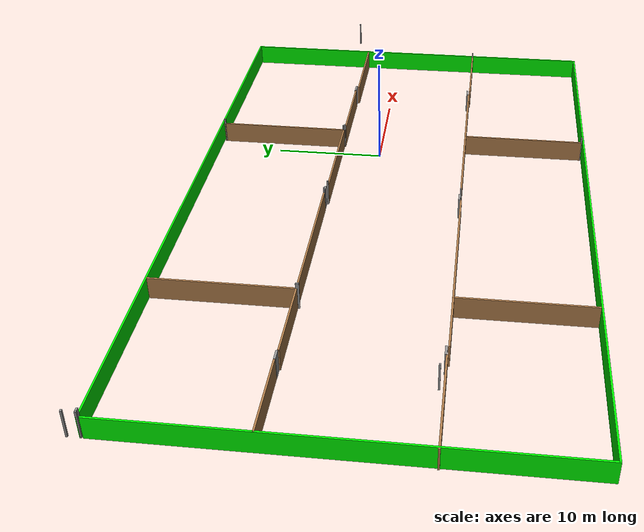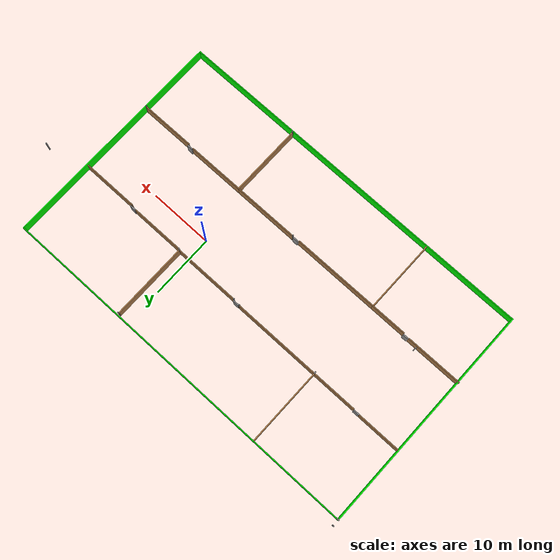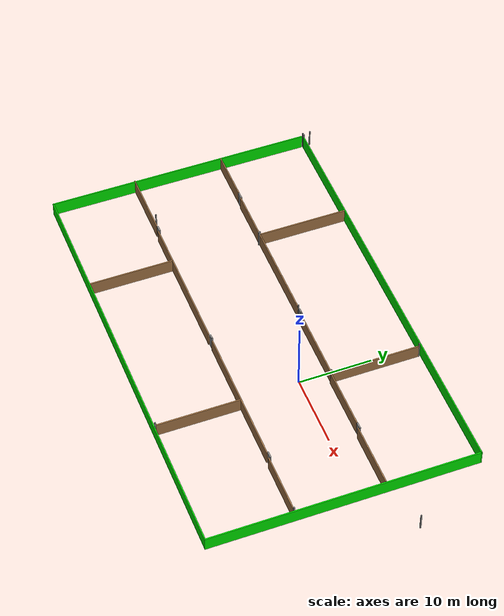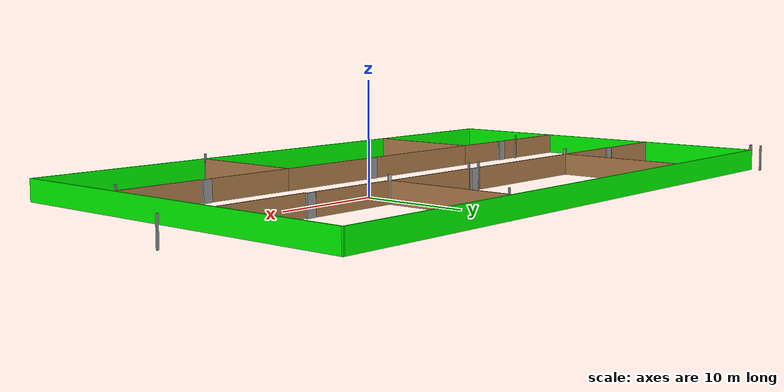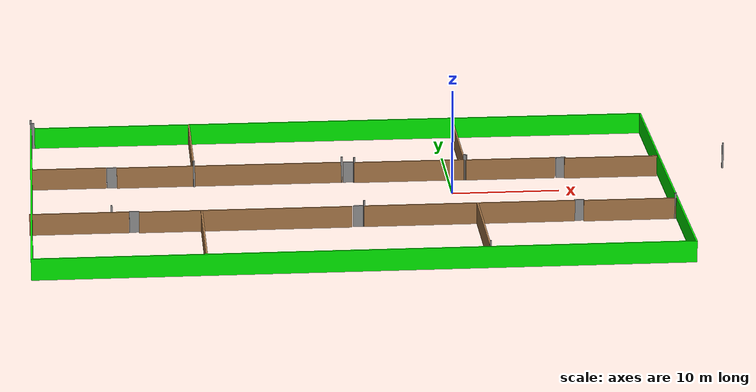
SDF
<?xml version='1.0'?>
<sdf version='1.6'>
  <model name='project1building'>
    <pose frame=''>-6.46196 -1.38005 0 0 -0 0</pose>
    <link name='Door_0'>
      <collision name='Door_0_Collision'>
        <geometry>
          <box>
            <size>0.9 0.17 2</size>
          </box>
        </geometry>
        <pose frame=''>0 0 1 0 -0 0</pose>
      </collision>
      <visual name='Door_0_Visual'>
        <pose frame=''>0 0 1 0 -0 0</pose>
        <geometry>
          <box>
            <size>0.9 0.17 2</size>
          </box>
        </geometry>
        <material>
          <script>
            <uri>file://media/materials/scripts/gazebo.material</uri>
            <name>Gazebo/Grey</name>
          </script>
        </material>
      </visual>
      <pose frame=''>-25.0869 5.43282 0 0 -0 0</pose>
    </link>
    <link name='Door_1'>
      <collision name='Door_1_Collision'>
        <geometry>
          <box>
            <size>0.9 0.17 2</size>
          </box>
        </geometry>
        <pose frame=''>0 0 1 0 -0 0</pose>
      </collision>
      <visual name='Door_1_Visual'>
        <pose frame=''>0 0 1 0 -0 0</pose>
        <geometry>
          <box>
            <size>0.9 0.17 2</size>
          </box>
        </geometry>
        <material>
          <script>
            <uri>file://media/materials/scripts/gazebo.material</uri>
            <name>Gazebo/Grey</name>
          </script>
        </material>
      </visual>
      <pose frame=''>-23.2683 -6.84282 0 0 -0 0</pose>
    </link>
    <link name='Door_4'>
      <collision name='Door_4_Collision'>
        <geometry>
          <box>
            <size>0.9 0.17 2</size>
          </box>
        </geometry>
        <pose frame=''>0 0 1 0 -0 0</pose>
      </collision>
      <visual name='Door_4_Visual'>
        <pose frame=''>0 0 1 0 -0 0</pose>
        <geometry>
          <box>
            <size>0.9 0.17 2</size>
          </box>
        </geometry>
        <material>
          <script>
            <uri>file://media/materials/scripts/gazebo.material</uri>
            <name>Gazebo/Grey</name>
          </script>
        </material>
      </visual>
      <pose frame=''>-2.96481 5.35785 0 0 -0 0</pose>
    </link>
    <link name='Door_5'>
      <collision name='Door_5_Collision'>
        <geometry>
          <box>
            <size>0.9 0.17 2</size>
          </box>
        </geometry>
        <pose frame=''>0 0 1 0 -0 0</pose>
      </collision>
      <visual name='Door_5_Visual'>
        <pose frame=''>0 0 1 0 -0 0</pose>
        <geometry>
          <box>
            <size>0.9 0.17 2</size>
          </box>
        </geometry>
        <material>
          <script>
            <uri>file://media/materials/scripts/gazebo.material</uri>
            <name>Gazebo/Grey</name>
          </script>
        </material>
      </visual>
      <pose frame=''>-2.96481 -6.90064 0 0 -0 0</pose>
    </link>
    <link name='Door_6'>
      <collision name='Door_6_Collision'>
        <geometry>
          <box>
            <size>0.9 0.17 2</size>
          </box>
        </geometry>
        <pose frame=''>0 0 1 0 -0 0</pose>
      </collision>
      <visual name='Door_6_Visual'>
        <pose frame=''>0 0 1 0 -0 0</pose>
        <geometry>
          <box>
            <size>0.9 0.17 2</size>
          </box>
        </geometry>
        <material>
          <script>
            <uri>file://media/materials/scripts/gazebo.material</uri>
            <name>Gazebo/Grey</name>
          </script>
        </material>
      </visual>
      <pose frame=''>17.0376 5.12607 0 0 -0 0</pose>
    </link>
    <link name='Door_7'>
      <collision name='Door_7_Collision'>
        <geometry>
          <box>
            <size>0.9 0.17 2</size>
          </box>
        </geometry>
        <pose frame=''>0 0 1 0 -0 0</pose>
      </collision>
      <visual name='Door_7_Visual'>
        <pose frame=''>0 0 1 0 -0 0</pose>
        <geometry>
          <box>
            <size>0.9 0.17 2</size>
          </box>
        </geometry>
        <material>
          <script>
            <uri>file://media/materials/scripts/gazebo.material</uri>
            <name>Gazebo/Grey</name>
          </script>
        </material>
      </visual>
      <pose frame=''>17.268 -6.84263 0 0 -0 0</pose>
    </link>
    <link name='Wall_10'>
      <collision name='Wall_10_Collision'>
        <geometry>
          <box>
            <size>0.15 0.15 2.5</size>
          </box>
        </geometry>
        <pose frame=''>0 0 1.25 0 -0 0</pose>
      </collision>
      <visual name='Wall_10_Visual'>
        <pose frame=''>0 0 1.25 0 -0 0</pose>
        <geometry>
          <box>
            <size>0.15 0.15 2.5</size>
          </box>
        </geometry>
        <material>
          <script>
            <uri>file://media/materials/scripts/gazebo.material</uri>
            <name>Gazebo/Grey</name>
          </script>
          <ambient>1 1 1 1</ambient>
        </material>
        <meta>
          <layer>0</layer>
        </meta>
      </visual>
      <pose frame=''>-32.548 17.55 0 0 -0 0</pose>
    </link>
    <link name='Wall_11'>
      <collision name='Wall_11_Collision'>
        <geometry>
          <box>
            <size>0.410301 0.15 2.5</size>
          </box>
        </geometry>
        <pose frame=''>0 0 1.25 0 -0 0</pose>
      </collision>
      <visual name='Wall_11_Visual'>
        <pose frame=''>0 0 1.25 0 -0 0</pose>
        <geometry>
          <box>
            <size>0.410301 0.15 2.5</size>
          </box>
        </geometry>
        <material>
          <script>
            <uri>file://media/materials/scripts/gazebo.material</uri>
            <name>Gazebo/Grey</name>
          </script>
          <ambient>1 1 1 1</ambient>
        </material>
        <meta>
          <layer>0</layer>
        </meta>
      </visual>
      <pose frame=''>-32.4179 17.55 0 0 0 -0.000357</pose>
    </link>
    <link name='Wall_13'>
      <collision name='Wall_13_Collision'>
        <geometry>
          <box>
            <size>7 0.15 2</size>
          </box>
        </geometry>
        <pose frame=''>0 0 1 0 -0 0</pose>
      </collision>
      <visual name='Wall_13_Visual'>
        <pose frame=''>0 0 1 0 -0 0</pose>
        <geometry>
          <box>
            <size>7 0.15 2</size>
          </box>
        </geometry>
        <material>
          <script>
            <uri>file://media/materials/scripts/gazebo.material</uri>
            <name>Gazebo/Wood</name>
          </script>
          <ambient>0 1 0 1</ambient>
        </material>
        <meta>
          <layer>0</layer>
        </meta>
      </visual>
      <pose frame=''>-29.087 5.43305 0 0 -0 0</pose>
    </link>
    <link name='Wall_17'>
      <collision name='Wall_17_Collision'>
        <geometry>
          <box>
            <size>12.25 0.15 2</size>
          </box>
        </geometry>
        <pose frame=''>0 0 1 0 -0 0</pose>
      </collision>
      <visual name='Wall_17_Visual'>
        <pose frame=''>0 0 1 0 -0 0</pose>
        <geometry>
          <box>
            <size>12.25 0.15 2</size>
          </box>
        </geometry>
        <material>
          <script>
            <uri>file://media/materials/scripts/gazebo.material</uri>
            <name>Gazebo/Wood</name>
          </script>
          <ambient>0 1 0 1</ambient>
        </material>
        <meta>
          <layer>0</layer>
        </meta>
      </visual>
      <pose frame=''>-17.419 11.376 0 0 0 -1.5708</pose>
    </link>
    <link name='Wall_18'>
      <collision name='Wall_18_Collision'>
        <geometry>
          <box>
            <size>7.25 0.15 2</size>
          </box>
        </geometry>
        <pose frame=''>0 0 1 0 -0 0</pose>
      </collision>
      <visual name='Wall_18_Visual'>
        <pose frame=''>0 0 1 0 -0 0</pose>
        <geometry>
          <box>
            <size>7.25 0.15 2</size>
          </box>
        </geometry>
        <material>
          <script>
            <uri>file://media/materials/scripts/gazebo.material</uri>
            <name>Gazebo/Wood</name>
          </script>
          <ambient>0 1 0 1</ambient>
        </material>
        <meta>
          <layer>0</layer>
        </meta>
      </visual>
      <pose frame=''>-20.969 5.32605 0 0 -0 3.14159</pose>
    </link>
    <link name='Wall_21'>
      <collision name='Wall_21_Collision'>
        <geometry>
          <box>
            <size>0.15 0.15 2.5</size>
          </box>
        </geometry>
        <pose frame=''>0 0 1.25 0 -0 0</pose>
      </collision>
      <visual name='Wall_21_Visual'>
        <pose frame=''>0 0 1.25 0 -0 0</pose>
        <geometry>
          <box>
            <size>0.15 0.15 2.5</size>
          </box>
        </geometry>
        <material>
          <script>
            <uri>file://media/materials/scripts/gazebo.material</uri>
            <name>Gazebo/Grey</name>
          </script>
          <ambient>1 1 1 1</ambient>
        </material>
        <meta>
          <layer>0</layer>
        </meta>
      </visual>
      <pose frame=''>-25.303 -6.50195 0 0 -0 0</pose>
    </link>
    <link name='Wall_23'>
      <collision name='Wall_23_Collision'>
        <geometry>
          <box>
            <size>9 0.15 2</size>
          </box>
        </geometry>
        <pose frame=''>0 0 1 0 -0 0</pose>
      </collision>
      <visual name='Wall_23_Visual'>
        <pose frame=''>0 0 1 0 -0 0</pose>
        <geometry>
          <box>
            <size>9 0.15 2</size>
          </box>
        </geometry>
        <material>
          <script>
            <uri>file://media/materials/scripts/gazebo.material</uri>
            <name>Gazebo/Wood</name>
          </script>
          <ambient>0 1 0 1</ambient>
        </material>
        <meta>
          <layer>0</layer>
        </meta>
      </visual>
      <pose frame=''>-28.2461 -6.93341 0 0 -0 0</pose>
    </link>
    <link name='Wall_26'>
      <collision name='Wall_26_Collision'>
        <geometry>
          <box>
            <size>5.75 0.15 2</size>
          </box>
        </geometry>
        <pose frame=''>0 0 1 0 -0 0</pose>
      </collision>
      <visual name='Wall_26_Visual'>
        <pose frame=''>0 0 1 0 -0 0</pose>
        <geometry>
          <box>
            <size>5.75 0.15 2</size>
          </box>
        </geometry>
        <material>
          <script>
            <uri>file://media/materials/scripts/gazebo.material</uri>
            <name>Gazebo/Wood</name>
          </script>
          <ambient>0 1 0 1</ambient>
        </material>
        <meta>
          <layer>0</layer>
        </meta>
      </visual>
      <pose frame=''>-19.973 -7.05495 0 0 -0 0</pose>
    </link>
    <link name='Wall_27'>
      <collision name='Wall_27_Collision'>
        <geometry>
          <box>
            <size>11.5 0.15 2</size>
          </box>
        </geometry>
        <pose frame=''>0 0 1 0 -0 0</pose>
      </collision>
      <visual name='Wall_27_Visual'>
        <pose frame=''>0 0 1 0 -0 0</pose>
        <geometry>
          <box>
            <size>11.5 0.15 2</size>
          </box>
        </geometry>
        <material>
          <script>
            <uri>file://media/materials/scripts/gazebo.material</uri>
            <name>Gazebo/Wood</name>
          </script>
          <ambient>0 1 0 1</ambient>
        </material>
        <meta>
          <layer>0</layer>
        </meta>
      </visual>
      <pose frame=''>-17.173 -12.73 0 0 0 -1.5708</pose>
    </link>
    <link name='Wall_3'>
      <collision name='Wall_3_Collision'>
        <geometry>
          <box>
            <size>0.16 0.15 2.5</size>
          </box>
        </geometry>
        <pose frame=''>0 0 1.25 0 -0 0</pose>
      </collision>
      <visual name='Wall_3_Visual'>
        <pose frame=''>0 0 1.25 0 -0 0</pose>
        <geometry>
          <box>
            <size>0.16 0.15 2.5</size>
          </box>
        </geometry>
        <material>
          <script>
            <uri>file://media/materials/scripts/gazebo.material</uri>
            <name>Gazebo/Grey</name>
          </script>
          <ambient>1 1 1 1</ambient>
        </material>
        <meta>
          <layer>0</layer>
        </meta>
      </visual>
      <pose frame=''>-32.5627 18.55 0 0 -0 0</pose>
    </link>
    <link name='Wall_32'>
      <collision name='Wall_32_Collision'>
        <geometry>
          <box>
            <size>0.3124 0.15 2.5</size>
          </box>
        </geometry>
        <pose frame=''>0 0 1.25 0 -0 0</pose>
      </collision>
      <visual name='Wall_32_Visual'>
        <pose frame=''>0 0 1.25 0 -0 0</pose>
        <geometry>
          <box>
            <size>0.3124 0.15 2.5</size>
          </box>
        </geometry>
        <material>
          <script>
            <uri>file://media/materials/scripts/gazebo.material</uri>
            <name>Gazebo/Grey</name>
          </script>
          <ambient>1 1 1 1</ambient>
        </material>
        <meta>
          <layer>0</layer>
        </meta>
      </visual>
      <pose frame=''>-17.4115 5.2452 0 0 0 -1.47732</pose>
    </link>
    <link name='Wall_37'>
      <collision name='Wall_37_Collision'>
        <geometry>
          <box>
            <size>14 0.15 2</size>
          </box>
        </geometry>
        <pose frame=''>0 0 1 0 -0 0</pose>
      </collision>
      <visual name='Wall_37_Visual'>
        <pose frame=''>0 0 1 0 -0 0</pose>
        <geometry>
          <box>
            <size>14 0.15 2</size>
          </box>
        </geometry>
        <material>
          <script>
            <uri>file://media/materials/scripts/gazebo.material</uri>
            <name>Gazebo/Wood</name>
          </script>
          <ambient>0 1 0 1</ambient>
        </material>
        <meta>
          <layer>0</layer>
        </meta>
      </visual>
      <pose frame=''>-10.494 5.32605 0 0 -0 0</pose>
    </link>
    <link name='Wall_38'>
      <collision name='Wall_38_Collision'>
        <geometry>
          <box>
            <size>0.16 0.15 2.5</size>
          </box>
        </geometry>
        <pose frame=''>0 0 1.25 0 -0 0</pose>
      </collision>
      <visual name='Wall_38_Visual'>
        <pose frame=''>0 0 1.25 0 -0 0</pose>
        <geometry>
          <box>
            <size>0.16 0.15 2.5</size>
          </box>
        </geometry>
        <material>
          <script>
            <uri>file://media/materials/scripts/gazebo.material</uri>
            <name>Gazebo/Grey</name>
          </script>
          <ambient>1 1 1 1</ambient>
        </material>
        <meta>
          <layer>0</layer>
        </meta>
      </visual>
      <pose frame=''>-3.56404 5.32605 0 0 -0 0</pose>
    </link>
    <link name='Wall_40'>
      <collision name='Wall_40_Collision'>
        <geometry>
          <box>
            <size>0.16 0.15 2.5</size>
          </box>
        </geometry>
        <pose frame=''>0 0 1.25 0 -0 0</pose>
      </collision>
      <visual name='Wall_40_Visual'>
        <pose frame=''>0 0 1.25 0 -0 0</pose>
        <geometry>
          <box>
            <size>0.16 0.15 2.5</size>
          </box>
        </geometry>
        <material>
          <script>
            <uri>file://media/materials/scripts/gazebo.material</uri>
            <name>Gazebo/Grey</name>
          </script>
          <ambient>1 1 1 1</ambient>
        </material>
        <meta>
          <layer>0</layer>
        </meta>
      </visual>
      <pose frame=''>-2.39819 5.17087 0 0 -0 0.034078</pose>
    </link>
    <link name='Wall_41'>
      <collision name='Wall_41_Collision'>
        <geometry>
          <box>
            <size>10.5 0.15 2</size>
          </box>
        </geometry>
        <pose frame=''>0 0 1 0 -0 0</pose>
      </collision>
      <visual name='Wall_41_Visual'>
        <pose frame=''>0 0 1 0 -0 0</pose>
        <geometry>
          <box>
            <size>10.5 0.15 2</size>
          </box>
        </geometry>
        <material>
          <script>
            <uri>file://media/materials/scripts/gazebo.material</uri>
            <name>Gazebo/Wood</name>
          </script>
          <ambient>0 1 0 1</ambient>
        </material>
        <meta>
          <layer>0</layer>
        </meta>
      </visual>
      <pose frame=''>2.78196 5.17105 0 0 -0 0</pose>
    </link>
    <link name='Wall_42'>
      <collision name='Wall_42_Collision'>
        <geometry>
          <box>
            <size>12.25 0.15 2</size>
          </box>
        </geometry>
        <pose frame=''>0 0 1 0 -0 0</pose>
      </collision>
      <visual name='Wall_42_Visual'>
        <pose frame=''>0 0 1 0 -0 0</pose>
        <geometry>
          <box>
            <size>12.25 0.15 2</size>
          </box>
        </geometry>
        <material>
          <script>
            <uri>file://media/materials/scripts/gazebo.material</uri>
            <name>Gazebo/Wood</name>
          </script>
          <ambient>0 1 0 1</ambient>
        </material>
        <meta>
          <layer>0</layer>
        </meta>
      </visual>
      <pose frame=''>7.95696 11.221 0 0 -0 1.5708</pose>
    </link>
    <link name='Wall_43'>
      <collision name='Wall_43_Collision'>
        <geometry>
          <box>
            <size>0.16 0.15 2.5</size>
          </box>
        </geometry>
        <pose frame=''>0 0 1.25 0 -0 0</pose>
      </collision>
      <visual name='Wall_43_Visual'>
        <pose frame=''>0 0 1.25 0 -0 0</pose>
        <geometry>
          <box>
            <size>0.16 0.15 2.5</size>
          </box>
        </geometry>
        <material>
          <script>
            <uri>file://media/materials/scripts/gazebo.material</uri>
            <name>Gazebo/Grey</name>
          </script>
          <ambient>1 1 1 1</ambient>
        </material>
        <meta>
          <layer>0</layer>
        </meta>
      </visual>
      <pose frame=''>7.9618 17.2709 0 0 0 -0.036291</pose>
    </link>
    <link name='Wall_45'>
      <collision name='Wall_45_Collision'>
        <geometry>
          <box>
            <size>13.75 0.15 2</size>
          </box>
        </geometry>
        <pose frame=''>0 0 1 0 -0 0</pose>
      </collision>
      <visual name='Wall_45_Visual'>
        <pose frame=''>0 0 1 0 -0 0</pose>
        <geometry>
          <box>
            <size>13.75 0.15 2</size>
          </box>
        </geometry>
        <material>
          <script>
            <uri>file://media/materials/scripts/gazebo.material</uri>
            <name>Gazebo/Wood</name>
          </script>
          <ambient>0 1 0 1</ambient>
        </material>
        <meta>
          <layer>0</layer>
        </meta>
      </visual>
      <pose frame=''>-10.373 -7.05495 0 0 -0 0</pose>
    </link>
    <link name='Wall_49'>
      <collision name='Wall_49_Collision'>
        <geometry>
          <box>
            <size>0.16 0.15 2.5</size>
          </box>
        </geometry>
        <pose frame=''>0 0 1.25 0 -0 0</pose>
      </collision>
      <visual name='Wall_49_Visual'>
        <pose frame=''>0 0 1.25 0 -0 0</pose>
        <geometry>
          <box>
            <size>0.16 0.15 2.5</size>
          </box>
        </geometry>
        <material>
          <script>
            <uri>file://media/materials/scripts/gazebo.material</uri>
            <name>Gazebo/Grey</name>
          </script>
          <ambient>1 1 1 1</ambient>
        </material>
        <meta>
          <layer>0</layer>
        </meta>
      </visual>
      <pose frame=''>-2.39819 -6.99408 0 0 -0 0.025083</pose>
    </link>
    <link name='Wall_5'>
      <collision name='Wall_5_Collision'>
        <geometry>
          <box>
            <size>36 0.15 2</size>
          </box>
        </geometry>
        <pose frame=''>0 0 1 0 -0 0</pose>
      </collision>
      <visual name='Wall_5_Visual'>
        <pose frame=''>0 0 1 0 -0 0</pose>
        <geometry>
          <box>
            <size>36 0.15 2</size>
          </box>
        </geometry>
        <material>
          <script>
            <uri>file://media/materials/scripts/gazebo.material</uri>
            <name>Gazebo/Grey</name>
          </script>
          <ambient>0 1 0 1</ambient>
        </material>
        <meta>
          <layer>0</layer>
        </meta>
      </visual>
      <pose frame=''>-32.548 -0.624953 0 0 0 -1.5708</pose>
    </link>
    <link name='Wall_50'>
      <collision name='Wall_50_Collision'>
        <geometry>
          <box>
            <size>10.5 0.15 2</size>
          </box>
        </geometry>
        <pose frame=''>0 0 1 0 -0 0</pose>
      </collision>
      <visual name='Wall_50_Visual'>
        <pose frame=''>0 0 1 0 -0 0</pose>
        <geometry>
          <box>
            <size>10.5 0.15 2</size>
          </box>
        </geometry>
        <material>
          <script>
            <uri>file://media/materials/scripts/gazebo.material</uri>
            <name>Gazebo/Wood</name>
          </script>
          <ambient>0 1 0 1</ambient>
        </material>
        <meta>
          <layer>0</layer>
        </meta>
      </visual>
      <pose frame=''>2.78196 -6.99395 0 0 -0 0</pose>
    </link>
    <link name='Wall_51'>
      <collision name='Wall_51_Collision'>
        <geometry>
          <box>
            <size>11.5 0.15 2</size>
          </box>
        </geometry>
        <pose frame=''>0 0 1 0 -0 0</pose>
      </collision>
      <visual name='Wall_51_Visual'>
        <pose frame=''>0 0 1 0 -0 0</pose>
        <geometry>
          <box>
            <size>11.5 0.15 2</size>
          </box>
        </geometry>
        <material>
          <script>
            <uri>file://media/materials/scripts/gazebo.material</uri>
            <name>Gazebo/Wood</name>
          </script>
          <ambient>0 1 0 1</ambient>
        </material>
        <meta>
          <layer>0</layer>
        </meta>
      </visual>
      <pose frame=''>7.95696 -12.669 0 0 0 -1.5708</pose>
    </link>
    <link name='Wall_52'>
      <collision name='Wall_52_Collision'>
        <geometry>
          <box>
            <size>0.16 0.15 2.5</size>
          </box>
        </geometry>
        <pose frame=''>0 0 1.25 0 -0 0</pose>
      </collision>
      <visual name='Wall_52_Visual'>
        <pose frame=''>0 0 1.25 0 -0 0</pose>
        <geometry>
          <box>
            <size>0.16 0.15 2.5</size>
          </box>
        </geometry>
        <material>
          <script>
            <uri>file://media/materials/scripts/gazebo.material</uri>
            <name>Gazebo/Grey</name>
          </script>
          <ambient>1 1 1 1</ambient>
        </material>
        <meta>
          <layer>0</layer>
        </meta>
      </visual>
      <pose frame=''>7.9618 -18.3441 0 0 0 -0.026712</pose>
    </link>
    <link name='Wall_54'>
      <collision name='Wall_54_Collision'>
        <geometry>
          <box>
            <size>0.310611 0.15 2.5</size>
          </box>
        </geometry>
        <pose frame=''>0 0 1.25 0 -0 0</pose>
      </collision>
      <visual name='Wall_54_Visual'>
        <pose frame=''>0 0 1.25 0 -0 0</pose>
        <geometry>
          <box>
            <size>0.310611 0.15 2.5</size>
          </box>
        </geometry>
        <material>
          <script>
            <uri>file://media/materials/scripts/gazebo.material</uri>
            <name>Gazebo/Grey</name>
          </script>
          <ambient>1 1 1 1</ambient>
        </material>
        <meta>
          <layer>0</layer>
        </meta>
      </visual>
      <pose frame=''>8.02196 5.12405 0 0 0 -0.626047</pose>
    </link>
    <link name='Wall_55'>
      <collision name='Wall_55_Collision'>
        <geometry>
          <box>
            <size>8.5 0.15 2</size>
          </box>
        </geometry>
        <pose frame=''>0 0 1 0 -0 0</pose>
      </collision>
      <visual name='Wall_55_Visual'>
        <pose frame=''>0 0 1 0 -0 0</pose>
        <geometry>
          <box>
            <size>8.5 0.15 2</size>
          </box>
        </geometry>
        <material>
          <script>
            <uri>file://media/materials/scripts/gazebo.material</uri>
            <name>Gazebo/Wood</name>
          </script>
          <ambient>0 1 0 1</ambient>
        </material>
        <meta>
          <layer>0</layer>
        </meta>
      </visual>
      <pose frame=''>12.262 5.07705 0 0 -0 0</pose>
    </link>
    <link name='Wall_6'>
      <collision name='Wall_6_Collision'>
        <geometry>
          <box>
            <size>59 0.15 2</size>
          </box>
        </geometry>
        <pose frame=''>0 0 1 0 -0 0</pose>
      </collision>
      <visual name='Wall_6_Visual'>
        <pose frame=''>0 0 1 0 -0 0</pose>
        <geometry>
          <box>
            <size>59 0.15 2</size>
          </box>
        </geometry>
        <material>
          <script>
            <uri>file://media/materials/scripts/gazebo.material</uri>
            <name>Gazebo/Grey</name>
          </script>
          <ambient>0 1 0 1</ambient>
        </material>
        <meta>
          <layer>0</layer>
        </meta>
      </visual>
      <pose frame=''>-3.12304 -18.55 0 0 -0 0</pose>
    </link>
    <link name='Wall_60'>
      <collision name='Wall_60_Collision'>
        <geometry>
          <box>
            <size>8.75 0.15 2</size>
          </box>
        </geometry>
        <pose frame=''>0 0 1 0 -0 0</pose>
      </collision>
      <visual name='Wall_60_Visual'>
        <pose frame=''>0 0 1 0 -0 0</pose>
        <geometry>
          <box>
            <size>8.75 0.15 2</size>
          </box>
        </geometry>
        <material>
          <script>
            <uri>file://media/materials/scripts/gazebo.material</uri>
            <name>Gazebo/Wood</name>
          </script>
          <ambient>0 1 0 1</ambient>
        </material>
        <meta>
          <layer>0</layer>
        </meta>
      </visual>
      <pose frame=''>21.745 4.88205 0 0 -0 0</pose>
    </link>
    <link name='Wall_62'>
      <collision name='Wall_62_Collision'>
        <geometry>
          <box>
            <size>0.16 0.15 2.5</size>
          </box>
        </geometry>
        <pose frame=''>0 0 1.25 0 -0 0</pose>
      </collision>
      <visual name='Wall_62_Visual'>
        <pose frame=''>0 0 1.25 0 -0 0</pose>
        <geometry>
          <box>
            <size>0.16 0.15 2.5</size>
          </box>
        </geometry>
        <material>
          <script>
            <uri>file://media/materials/scripts/gazebo.material</uri>
            <name>Gazebo/Grey</name>
          </script>
          <ambient>1 1 1 1</ambient>
        </material>
        <meta>
          <layer>0</layer>
        </meta>
      </visual>
      <pose frame=''>32.6661 6.65487 0 0 -0 0</pose>
    </link>
    <link name='Wall_67'>
      <collision name='Wall_67_Collision'>
        <geometry>
          <box>
            <size>9 0.15 2</size>
          </box>
        </geometry>
        <pose frame=''>0 0 1 0 -0 0</pose>
      </collision>
      <visual name='Wall_67_Visual'>
        <pose frame=''>0 0 1 0 -0 0</pose>
        <geometry>
          <box>
            <size>9 0.15 2</size>
          </box>
        </geometry>
        <material>
          <script>
            <uri>file://media/materials/scripts/gazebo.material</uri>
            <name>Gazebo/Wood</name>
          </script>
          <ambient>0 1 0 1</ambient>
        </material>
        <meta>
          <layer>0</layer>
        </meta>
      </visual>
      <pose frame=''>12.382 -6.99395 0 0 -0 0</pose>
    </link>
    <link name='Wall_7'>
      <collision name='Wall_7_Collision'>
        <geometry>
          <box>
            <size>36.25 0.15 2</size>
          </box>
        </geometry>
        <pose frame=''>0 0 1 0 -0 0</pose>
      </collision>
      <visual name='Wall_7_Visual'>
        <pose frame=''>0 0 1 0 -0 0</pose>
        <geometry>
          <box>
            <size>36.25 0.15 2</size>
          </box>
        </geometry>
        <material>
          <script>
            <uri>file://media/materials/scripts/gazebo.material</uri>
            <name>Gazebo/Grey</name>
          </script>
          <ambient>0 1 0 1</ambient>
        </material>
        <meta>
          <layer>0</layer>
        </meta>
      </visual>
      <pose frame=''>26.302 -0.499953 0 0 -0 1.5708</pose>
    </link>
    <link name='Wall_71'>
      <collision name='Wall_71_Collision'>
        <geometry>
          <box>
            <size>8.5 0.15 2</size>
          </box>
        </geometry>
        <pose frame=''>0 0 1 0 -0 0</pose>
      </collision>
      <visual name='Wall_71_Visual'>
        <pose frame=''>0 0 1 0 -0 0</pose>
        <geometry>
          <box>
            <size>8.5 0.15 2</size>
          </box>
        </geometry>
        <material>
          <script>
            <uri>file://media/materials/scripts/gazebo.material</uri>
            <name>Gazebo/Wood</name>
          </script>
          <ambient>0 1 0 1</ambient>
        </material>
        <meta>
          <layer>0</layer>
        </meta>
      </visual>
      <pose frame=''>21.935 -7.08895 0 0 -0 0</pose>
    </link>
    <link name='Wall_72'>
      <collision name='Wall_72_Collision'>
        <geometry>
          <box>
            <size>0.16 0.15 2.5</size>
          </box>
        </geometry>
        <pose frame=''>0 0 1.25 0 -0 0</pose>
      </collision>
      <visual name='Wall_72_Visual'>
        <pose frame=''>0 0 1.25 0 -0 0</pose>
        <geometry>
          <box>
            <size>0.16 0.15 2.5</size>
          </box>
        </geometry>
        <material>
          <script>
            <uri>file://media/materials/scripts/gazebo.material</uri>
            <name>Gazebo/Grey</name>
          </script>
          <ambient>1 1 1 1</ambient>
        </material>
        <meta>
          <layer>0</layer>
        </meta>
      </visual>
      <pose frame=''>26.1151 -7.08885 0 0 -0 0.020148</pose>
    </link>
    <link name='Wall_8'>
      <collision name='Wall_8_Collision'>
        <geometry>
          <box>
            <size>59 0.15 2</size>
          </box>
        </geometry>
        <pose frame=''>0 0 1 0 -0 0</pose>
      </collision>
      <visual name='Wall_8_Visual'>
        <pose frame=''>0 0 1 0 -0 0</pose>
        <geometry>
          <box>
            <size>59 0.15 2</size>
          </box>
        </geometry>
        <material>
          <script>
            <uri>file://media/materials/scripts/gazebo.material</uri>
            <name>Gazebo/Grey</name>
          </script>
          <ambient>0 1 0 1</ambient>
        </material>
        <meta>
          <layer>0</layer>
        </meta>
      </visual>
      <pose frame=''>-3.12304 17.55 0 0 -0 3.14159</pose>
    </link>
    <link name='Wall_9'>
      <collision name='Wall_9_Collision'>
        <geometry>
          <box>
            <size>0.15 0.15 2.5</size>
          </box>
        </geometry>
        <pose frame=''>0 0 1.25 0 -0 0</pose>
      </collision>
      <visual name='Wall_9_Visual'>
        <pose frame=''>0 0 1.25 0 -0 0</pose>
        <geometry>
          <box>
            <size>0.15 0.15 2.5</size>
          </box>
        </geometry>
        <material>
          <script>
            <uri>file://media/materials/scripts/gazebo.material</uri>
            <name>Gazebo/Grey</name>
          </script>
          <ambient>1 1 1 1</ambient>
        </material>
        <meta>
          <layer>0</layer>
        </meta>
      </visual>
      <pose frame=''>-32.548 17.55 0 0 -0 0</pose>
    </link>
    <static>1</static>
  </model>
</sdf>
